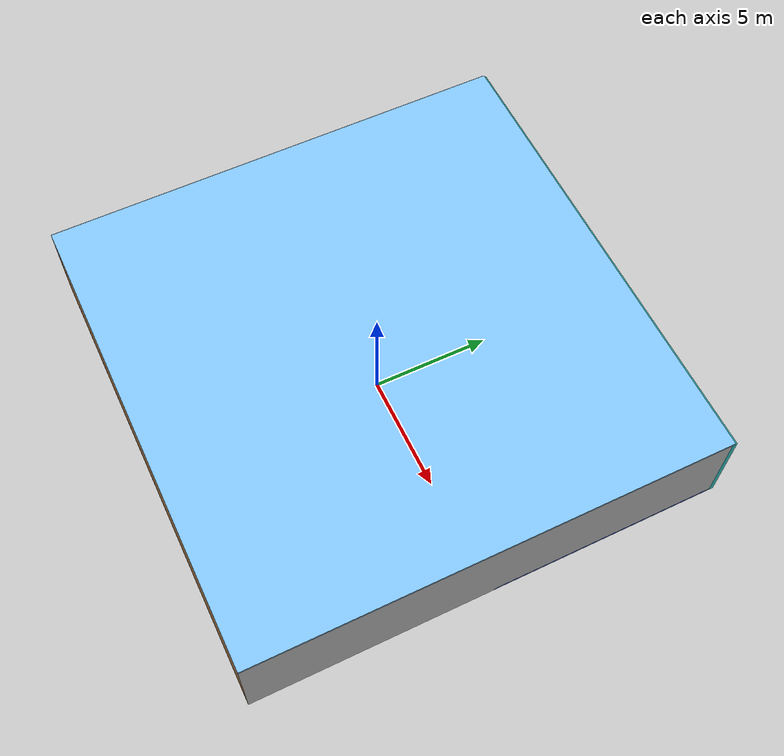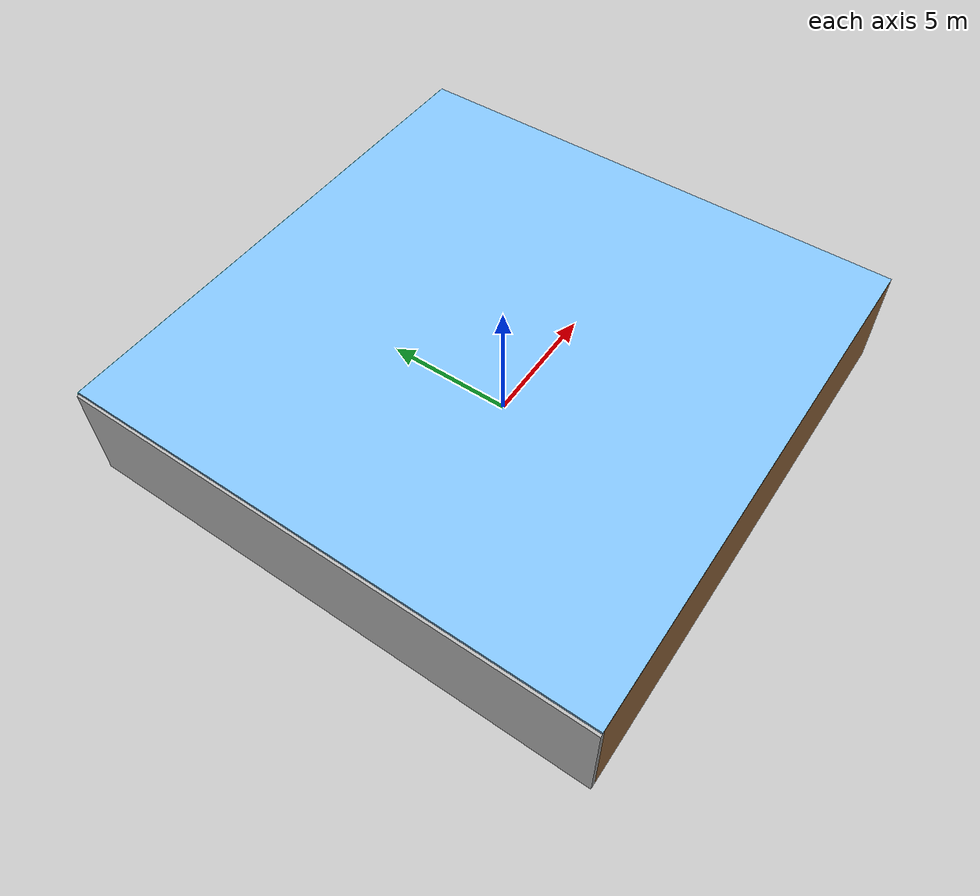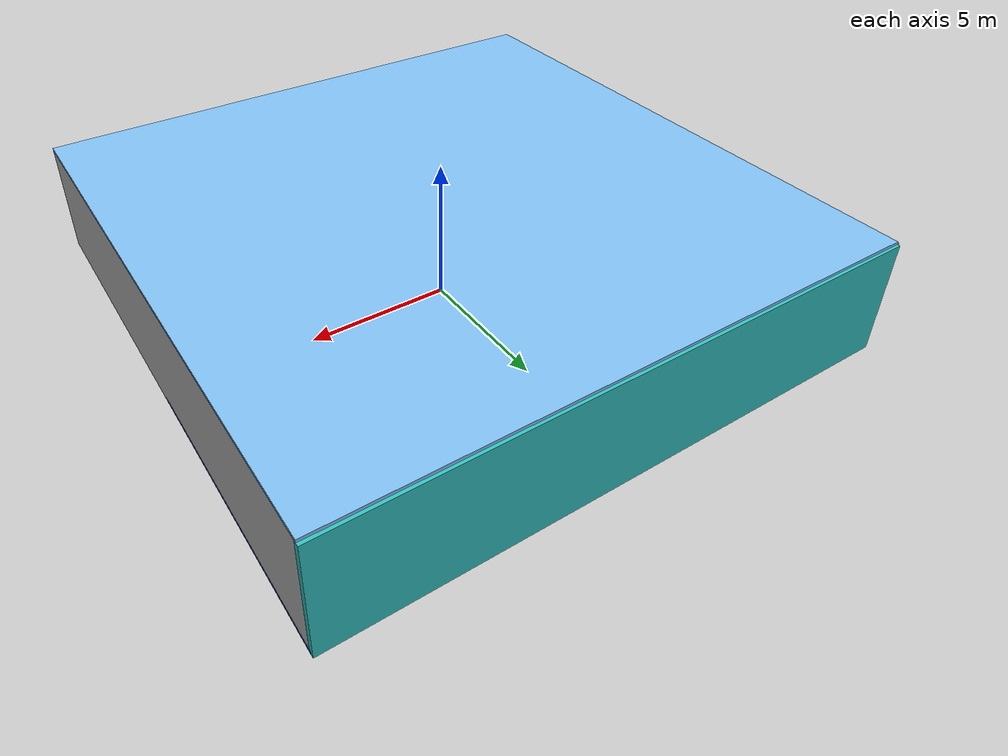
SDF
<sdf version="1.4">
 <world name="default">
  <physics type="ode">
   <max_step_size>0.001</max_step_size>
   <real_time_factor>1</real_time_factor>
   <real_time_update_rate>1000</real_time_update_rate>
   <gravity>0 0 -9.8</gravity>
  </physics>
  <scene><ambient>0.4 0.4 0.4 1</ambient><background>0.7 0.7 0.7 1</background><shadows>1</shadows></scene>
  <model name="Surrounding">
   <static>1</static>
   <link name="Ceiling">
    <collision name="Ceiling_Collision"><geometry><box><size>20 20 0.1</size></box></geometry></collision>
    <visual name="Ceiling_Visual">
     <geometry><box><size>20 20 0.1</size></box></geometry>
     <material>
      <script><uri>file://media/materials/scripts/gazebo.material</uri><name>Gazebo/SkyBlue</name></script>
     </material>
    </visual>
    <pose>0 0 4.05 0 0 0</pose>
   </link>
   <link name="Wall_South">
    <collision name="Wall_South_Collision">
     <geometry><box><size>20 0 4</size></box></geometry>
     <pose>0 0 2 0 -0 0</pose>
    </collision>
    <visual name="Wall_South_Visual">
     <pose>0 0 2 0 -0 0</pose>
     <geometry><box><size>20 0 4</size></box></geometry>
     <material>
      <script><uri>file://media/materials/scripts/gazebo.material</uri><name>Gazebo/WoodPallet</name></script>
     </material>
    </visual>
    <velocity_decay><linear>0</linear><angular>0</angular></velocity_decay>
    <pose>0 -10 0 0 -0 0</pose>
   </link>
   <link name="Wall_East">
    <collision name="Wall_21_Collision">
     <geometry><box><size>20 0 4</size></box></geometry>
     <pose>0 0 2 0 -0 0</pose>
    </collision>
    <visual name="Wall_21_Visual">
     <pose>0 0 2 0 -0 0</pose>
     <geometry><box><size>20 0 4</size></box></geometry>
     <material>
      <script><uri>file://media/materials/scripts/gazebo.material</uri><name>Gazebo/JointAnchor</name></script>
     </material>
    </visual>
    <velocity_decay><linear>0</linear><angular>0</angular></velocity_decay>
    <pose>10 0 0 0 -0 1.5708</pose>
   </link>
   <link name="Wall_North">
    <collision name="Wall_22_Collision">
     <geometry><box><size>20 0.2 4</size></box></geometry>
     <pose>0 0 2 0 -0 0</pose>
    </collision>
    <visual name="Wall_22_Visual">
     <pose>0 0 2 0 -0 0</pose>
     <geometry><box><size>20 0.2 4</size></box></geometry>
     <material>
      <script><uri>file://media/materials/scripts/gazebo.material</uri><name>Gazebo/Turquoise</name></script>
     </material>
    </visual>
    <velocity_decay><linear>0</linear><angular>0</angular></velocity_decay>
    <pose>0 10 0 0 -0 0</pose>
   </link>
   <link name="Wall_West">
    <collision name="Wall_23_Collision">
     <geometry><box><size>20 0.2 4</size></box></geometry>
     <pose>0 0 2 0 -0 0</pose>
    </collision>
    <visual name="Wall_23_Visual">
     <pose>0 0 2 0 -0 0</pose>
     <geometry><box><size>20 0.2 4</size></box></geometry>
     <material>
      <script><uri>file://media/materials/scripts/gazebo.material</uri><name>Gazebo/LightOn</name></script>
     </material>
    </visual>
    <velocity_decay><linear>0</linear><angular>0</angular></velocity_decay>
    <pose>-10 0 0 0 0 -1.5708</pose>
   </link>
   <link name="Ground_link">
    <collision name="collision">
     <pose>0 0 .05 0 -0 0</pose>
     <geometry><box><size>20 20 0.1</size></box></geometry>
    </collision>
    <visual name="visual">
     <pose>0 0 .05 0 -0 0</pose>
     <geometry><box><size>20 20 0.1</size></box></geometry>
     <material>
      <script><uri>file://media/materials/scripts/gazebo.material</uri><name>Gazebo/BlueLaser</name></script>
     </material>
    </visual>
   </link>
   <static>1</static>
  </model>
  <spherical_coordinates>
   <surface_model>EARTH_WGS84</surface_model>
   <latitude_deg>0</latitude_deg>
   <longitude_deg>0</longitude_deg>
   <elevation>0</elevation>
   <heading_deg>0</heading_deg>
  </spherical_coordinates>
  <light name="lightball_0" type="diffuse">
   <diffuse>0.8 0.8 0.8 1</diffuse>
   <specular>0.2 0.2 0.2 1</specular>
   <attenuation>
    <range>100</range>
    <constant>0.7</constant>
    <linear>0.01</linear>
    <quadratic>0.001</quadratic>
   </attenuation>
   <direction>-0.5 0.1 -0.9</direction>
   <pose>-8.7739312737 -4.3786307102 0.738708754958 0 0 0</pose>
  </light>
  <light name="lightball_1" type="diffuse">
   <diffuse>0.8 0.8 0.8 1</diffuse>
   <specular>0.2 0.2 0.2 1</specular>
   <attenuation>
    <range>100</range>
    <constant>0.7</constant>
    <linear>0.01</linear>
    <quadratic>0.001</quadratic>
   </attenuation>
   <direction>-0.5 0.1 -0.9</direction>
   <pose>8.89645833777 -3.37002856863 2.71094150174 0 0 0</pose>
  </light>
  <light name="lightball_2" type="diffuse">
   <diffuse>0.8 0.8 0.8 1</diffuse>
   <specular>0.2 0.2 0.2 1</specular>
   <attenuation>
    <range>100</range>
    <constant>0.7</constant>
    <linear>0.01</linear>
    <quadratic>0.001</quadratic>
   </attenuation>
   <direction>-0.5 0.1 -0.9</direction>
   <pose>-5.36357787789 7.26868356797 2.3041875917 0 0 0</pose>
  </light>
  <light name="lightball_3" type="diffuse">
   <diffuse>0.8 0.8 0.8 1</diffuse>
   <specular>0.2 0.2 0.2 1</specular>
   <attenuation>
    <range>100</range>
    <constant>0.7</constant>
    <linear>0.01</linear>
    <quadratic>0.001</quadratic>
   </attenuation>
   <direction>-0.5 0.1 -0.9</direction>
   <pose>-7.96433700502 8.45860744599 1.36217943816 0 0 0</pose>
  </light>
  <light name="lightball_4" type="diffuse">
   <diffuse>0.8 0.8 0.8 1</diffuse>
   <specular>0.2 0.2 0.2 1</specular>
   <attenuation>
    <range>100</range>
    <constant>0.7</constant>
    <linear>0.01</linear>
    <quadratic>0.001</quadratic>
   </attenuation>
   <direction>-0.5 0.1 -0.9</direction>
   <pose>7.18227984528 -8.26709296098 3.81996924133 0 0 0</pose>
  </light>
  <light name="lightball_5" type="diffuse">
   <diffuse>0.8 0.8 0.8 1</diffuse>
   <specular>0.2 0.2 0.2 1</specular>
   <attenuation>
    <range>100</range>
    <constant>0.7</constant>
    <linear>0.01</linear>
    <quadratic>0.001</quadratic>
   </attenuation>
   <direction>-0.5 0.1 -0.9</direction>
   <pose>3.3905797534 -9.2960504876 3.1757419213 0 0 0</pose>
  </light>
  <light name="lightball_6" type="diffuse">
   <diffuse>0.8 0.8 0.8 1</diffuse>
   <specular>0.2 0.2 0.2 1</specular>
   <attenuation>
    <range>100</range>
    <constant>0.7</constant>
    <linear>0.01</linear>
    <quadratic>0.001</quadratic>
   </attenuation>
   <direction>-0.5 0.1 -0.9</direction>
   <pose>6.95921030987 8.1747504996 2.97336205292 0 0 0</pose>
  </light>
  <light name="lightball_7" type="diffuse">
   <diffuse>0.8 0.8 0.8 1</diffuse>
   <specular>0.2 0.2 0.2 1</specular>
   <attenuation>
    <range>100</range>
    <constant>0.7</constant>
    <linear>0.01</linear>
    <quadratic>0.001</quadratic>
   </attenuation>
   <direction>-0.5 0.1 -0.9</direction>
   <pose>-0.233144752442 8.50454841879 1.8838658343 0 0 0</pose>
  </light>
  <light name="lightball_8" type="diffuse">
   <diffuse>0.8 0.8 0.8 1</diffuse>
   <specular>0.2 0.2 0.2 1</specular>
   <attenuation>
    <range>100</range>
    <constant>0.7</constant>
    <linear>0.01</linear>
    <quadratic>0.001</quadratic>
   </attenuation>
   <direction>-0.5 0.1 -0.9</direction>
   <pose>-8.97253177489 9.81802070578 1.38871605872 0 0 0</pose>
  </light>
  <include><uri>model://cabinet</uri><pose>-3.53772467114 -5.69323794872 0 0 0 1.29126287974</pose></include>
  <include>
   <uri>model://robocup_3Dsim_goal</uri>
   <pose>-3.97949238633 5.18148819156 0 0 0 2.2480471718</pose>
  </include>
  <include>
   <uri>model://textured_shapes</uri>
   <pose>-2.15515772822 -4.1002114355 0 0 0 3.04372817843</pose>
  </include>
  <include>
   <uri>model://textured_shapes</uri>
   <pose>-0.817273046955 5.07977807997 0 0 0 2.50373307898</pose>
  </include>
  <include><uri>model://table</uri><pose>0.593310531928 -8.20207258113 0 0 0 2.17814663957</pose></include>
  <include>
   <uri>model://robocup_3Dsim_goal</uri>
   <pose>0.965574782054 3.5529792397 0 0 0 2.80811608846</pose>
  </include>
  <include>
   <uri>model://robocup_3Dsim_goal</uri>
   <pose>3.96548188287 -1.71755693024 0 0 0 2.433951709</pose>
  </include>
  <include><uri>model://table</uri><pose>7.88030486932 8.10383104428 0 0 0 2.24109306159</pose></include>
 </world>
</sdf>

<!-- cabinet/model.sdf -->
<sdf version="1.5">
  <model name="cabinet">
    <static>true</static>
    <link name="cabinet_bottom_plate">
      <inertial>
        <pose>0 0 -1 0 0 0</pose>
        <inertia>
          <ixx>2.050000</ixx>
          <ixy>0</ixy>
          <ixz>0</ixz>
          <iyy>2.050000</iyy>
          <iyz>0</iyz>
          <izz>2.050000</izz>
        </inertia>
        <mass>25.000000</mass>
      </inertial>
      <collision name="cabinet_bottom_plate_geom">
        <pose>0 0 0.010000 0 0 0</pose>
        <geometry>
          <box>
            <size>0.450000 0.450000 0.020000</size>
          </box>
        </geometry>
      </collision>
      <visual name="cabinet_bottom_plate_geom_visual">
        <pose>0 0 0.010000 0 0 0</pose>
        <geometry>
          <box>
            <size>0.450000 0.450000 0.020000</size>
          </box>
        </geometry>
        <material>
          <script>
            <uri>model://media/materials/scripts/gazebo.material</uri>
            <name>Gazebo/Wood</name>
          </script>
        </material>
      </visual>
      <collision name="cabinet_bottom_plate_geom_cabinet_back_plate">
        <pose>0.235000 0 0.510000 0 0 0</pose>
        <geometry>
          <box>
            <size>0.020000 0.450000 1.020000</size>
          </box>
        </geometry>
      </collision>
      <visual name="cabinet_bottom_plate_geom_cabinet_back_plate_visual">
        <pose>0.235000 0 0.510000 0 0 0</pose>
        <geometry>
          <box>
            <size>0.020000 0.450000 1.020000</size>
          </box>
        </geometry>
        <material>
          <script>
            <uri>model://media/materials/scripts/gazebo.material</uri>
            <name>Gazebo/Wood</name>
          </script>
        </material>
      </visual>
      <collision name="cabinet_bottom_plate_geom_cabinet_left_plate">
        <pose>0 0.235000 0.510000 0 0 0</pose>
        <geometry>
          <box>
            <size>0.450000 0.020000 1.020000</size>
          </box>
        </geometry>
      </collision>
      <visual name="cabinet_bottom_plate_geom_cabinet_left_plate_visual">
        <pose>0 0.235000 0.510000 0 0 0</pose>
        <geometry>
          <box>
            <size>0.450000 0.020000 1.020000</size>
          </box>
        </geometry>
        <material>
          <script>
            <uri>model://media/materials/scripts/gazebo.material</uri>
            <name>Gazebo/Wood</name>
          </script>
        </material>
      </visual>
      <collision name="cabinet_bottom_plate_geom_cabinet_middle_plate">
        <pose>0 0 0.510000 0 0 0</pose>
        <geometry>
          <box>
            <size>0.450000 0.450000 0.020000</size>
          </box>
        </geometry>
      </collision>
      <visual name="cabinet_bottom_plate_geom_cabinet_middle_plate_visual">
        <pose>0 0 0.510000 0 0 0</pose>
        <geometry>
          <box>
            <size>0.450000 0.450000 0.020000</size>
          </box>
        </geometry>
        <material>
          <script>
            <uri>model://media/materials/scripts/gazebo.material</uri>
            <name>Gazebo/Wood</name>
          </script>
        </material>
      </visual>
      <collision name="cabinet_bottom_plate_geom_cabinet_right_plate">
        <pose>0 -0.235000 0.510000 0 0 0</pose>
        <geometry>
          <box>
            <size>0.450000 0.020000 1.020000</size>
          </box>
        </geometry>
      </collision>
      <visual name="cabinet_bottom_plate_geom_cabinet_right_plate_visual">
        <pose>0 -0.235000 0.510000 0 0 0</pose>
        <geometry>
          <box>
            <size>0.450000 0.020000 1.020000</size>
          </box>
        </geometry>
        <material>
          <script>
            <uri>model://media/materials/scripts/gazebo.material</uri>
            <name>Gazebo/Wood</name>
          </script>
        </material>
      </visual>
      <collision name="cabinet_bottom_plate_geom_cabinet_top_plate">
        <pose>0 0 1.010000 0 0 0</pose>
        <geometry>
          <box>
            <size>0.450000 0.450000 0.020000</size>
          </box>
        </geometry>
      </collision>
      <visual name="cabinet_bottom_plate_geom_cabinet_top_plate_visual">
        <pose>0 0 1.010000 0 0 0</pose>
        <geometry>
          <box>
            <size>0.450000 0.450000 0.020000</size>
          </box>
        </geometry>
        <material>
          <script>
            <uri>model://media/materials/scripts/gazebo.material</uri>
            <name>Gazebo/Wood</name>
          </script>
        </material>
      </visual>
    </link>
  </model>
</sdf>

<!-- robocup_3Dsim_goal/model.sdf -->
<sdf version="1.5">
  <model name="robocup_3d_goal">
    <static>true</static>
    <link name="left_post">
      <pose>0 1.05 0.45 0 0 0</pose>
      <collision name="collision">
        <geometry>
          <cylinder>
            <radius>0.05</radius>
            <length>0.9</length>
          </cylinder>
        </geometry>
      </collision>
      <visual name="visual">
        <geometry>
          <cylinder>
            <radius>0.05</radius>
            <length>0.9</length>
          </cylinder>
        </geometry>
        <material>
          <script>
            <uri>file://media/materials/scripts/gazebo.material</uri>
            <name>Gazebo/ZincYellow</name>
          </script>
        </material>
      </visual>
    </link>
    <link name="left_support_horiz_lower">
      <pose>0.30 1.05 0.01 0 0 0</pose>
      <collision name="collision">
        <geometry>
          <box>
            <size>0.50 0.02 0.02</size>
          </box>
        </geometry>
      </collision>
      <visual name="visual">
        <geometry>
          <box>
            <size>0.50 0.02 0.02</size>
          </box>
        </geometry>
        <material>
          <script>
            <uri>file://media/materials/scripts/gazebo.material</uri>
            <name>Gazebo/White</name>
          </script>
        </material>
      </visual>
    </link>
    <link name="left_support_horiz_upper">
      <pose>0.30 1.05 0.79 0 0 0</pose>
      <collision name="collision">
        <geometry>
          <box>
            <size>0.50 0.02 0.02</size>
          </box>
        </geometry>
      </collision>
      <visual name="visual">
        <geometry>
          <box>
            <size>0.50 0.02 0.02</size>
          </box>
        </geometry>
        <material>
          <script>
            <uri>file://media/materials/scripts/gazebo.material</uri>
            <name>Gazebo/White</name>
          </script>
        </material>
      </visual>
    </link>
    <link name="left_support_vertical">
      <pose>0.56 1.05 0.4 0 1.5708 0</pose>
      <collision name="collision">
        <geometry>
          <box>
            <size>0.80 0.02 0.02</size>
          </box>
        </geometry>
      </collision>
      <visual name="visual">
        <geometry>
          <box>
            <size>0.80 0.02 0.02</size>
          </box>
        </geometry>
        <material>
          <script>
            <uri>file://media/materials/scripts/gazebo.material</uri>
            <name>Gazebo/White</name>
          </script>
        </material>
      </visual>
    </link>
    <link name="right_support_horiz_lower">
      <pose>0.30 -1.05 0.01 0 0 0</pose>
      <collision name="collision">
        <geometry>
          <box>
            <size>0.50 0.02 0.02</size>
          </box>
        </geometry>
      </collision>
      <visual name="visual">
        <geometry>
          <box>
            <size>0.50 0.02 0.02</size>
          </box>
        </geometry>
        <material>
          <script>
            <uri>file://media/materials/scripts/gazebo.material</uri>
            <name>Gazebo/White</name>
          </script>
        </material>
      </visual>
    </link>
    <link name="right_support_horiz_upper">
      <pose>0.30 -1.05 0.79 0 0 0</pose>
      <collision name="collision">
        <geometry>
          <box>
            <size>0.50 0.02 0.02</size>
          </box>
        </geometry>
      </collision>
      <visual name="visual">
        <geometry>
          <box>
            <size>0.50 0.02 0.02</size>
          </box>
        </geometry>
        <material>
          <script>
            <uri>file://media/materials/scripts/gazebo.material</uri>
            <name>Gazebo/White</name>
          </script>
        </material>
      </visual>
    </link>
    <link name="right_support_vertical">
      <pose>0.56 -1.05 0.4 0 1.5708 0</pose>
      <collision name="collision">
        <geometry>
          <box>
            <size>0.80 0.02 0.02</size>
          </box>
        </geometry>
      </collision>
      <visual name="visual">
        <geometry>
          <box>
            <size>0.80 0.02 0.02</size>
          </box>
        </geometry>
        <material>
          <script>
            <uri>file://media/materials/scripts/gazebo.material</uri>
            <name>Gazebo/White</name>
          </script>
        </material>
      </visual>
    </link>
    <link name="center_support_horiz_lower">
      <pose>0.56 0 0.01 0 1.5708 0</pose>
      <collision name="collision">
        <geometry>
          <box>
            <size>0.02 2.08 0.02</size>
          </box>
        </geometry>
      </collision>
      <visual name="visual">
        <geometry>
          <box>
            <size>0.02 2.08 0.02</size>
          </box>
        </geometry>
        <material>
          <script>
            <uri>file://media/materials/scripts/gazebo.material</uri>
            <name>Gazebo/White</name>
          </script>
        </material>
      </visual>
    </link>
    <link name="center_support_horiz_upper">
      <pose>0.56 0 0.79 0 1.5708 0</pose>
      <collision name="collision">
        <geometry>
          <box>
            <size>0.02 2.08 0.02</size>
          </box>
        </geometry>
      </collision>
      <visual name="visual">
        <geometry>
          <box>
            <size>0.02 2.08 0.02</size>
          </box>
        </geometry>
        <material>
          <script>
            <uri>file://media/materials/scripts/gazebo.material</uri>
            <name>Gazebo/White</name>
          </script>
        </material>
      </visual>
    </link>
    <link name="right_post">
      <pose>0 -1.05 0.45 0 0 0</pose>
      <collision name="collision">
        <geometry>
          <cylinder>
            <radius>0.05</radius>
            <length>0.9</length>
          </cylinder>
        </geometry>
      </collision>
      <visual name="visual">
        <geometry>
          <cylinder>
            <radius>0.05</radius>
            <length>0.9</length>
          </cylinder>
        </geometry>
        <material>
          <script>
            <uri>file://media/materials/scripts/gazebo.material</uri>
            <name>Gazebo/ZincYellow</name>
          </script>
        </material>
      </visual>
    </link>
    <link name="crossbar">
      <pose>0 0 0.85 1.57 1.57 0</pose>
      <collision name="collision">
        <geometry>
          <cylinder>
            <radius>0.05</radius>
            <length>2.0</length>
          </cylinder>
        </geometry>
      </collision>
      <visual name="visual">
        <geometry>
          <cylinder>
            <radius>0.05</radius>
            <length>2.0</length>
          </cylinder>
        </geometry>
        <material>
          <script>
            <uri>file://media/materials/scripts/gazebo.material</uri>
            <name>Gazebo/ZincYellow</name>
          </script>
        </material>
      </visual>
    </link>
    <link name="center_net">
      <pose>0.56 0 0.40 0 0 0</pose>
      <collision name="collision">
        <geometry>
          <box>
            <size>0.01 2.1 0.80</size>
          </box>
        </geometry>
      </collision>
      <visual name="visual">
        <geometry>
          <box>
            <size>0.01 2.1 0.80</size>
          </box>
        </geometry>
        <material>
          <script>
            <uri>model://../model_source/models/robocup09_spl_field/materials/scripts/</uri>
            <uri>model://../model_source/models/robocup09_spl_field/materials/textures/</uri>
            <name>RoboCup/Net</name>
          </script>
        </material>
      </visual>
    </link>
    <link name="left_net">
      <pose>0.30 1.05 0.40 0 0 0</pose>
      <collision name="collision">
        <geometry>
          <box>
            <size>0.50 0.01 0.76</size>
          </box>
        </geometry>
      </collision>
      <visual name="visual">
        <geometry>
          <box>
            <size>0.50 0.01 0.76</size>
          </box>
        </geometry>
        <material>
          <script>
            <uri>model://../model_source/models/robocup09_spl_field/materials/scripts/</uri>
            <uri>model://../model_source/models/robocup09_spl_field/materials/textures/</uri>
            <name>RoboCup/Net</name>
          </script>
        </material>
      </visual>
    </link>
    <link name="right_net">
      <pose>0.30 -1.05 0.40 0 0 0</pose>
      <collision name="collision">
        <geometry>
          <box>
            <size>0.50 0.01 0.76</size>
          </box>
        </geometry>
      </collision>
      <visual name="visual">
        <geometry>
          <box>
            <size>0.50 0.01 0.76</size>
          </box>
        </geometry>
        <material>
          <script>
            <uri>model://../model_source/models/robocup09_spl_field/materials/scripts/</uri>
            <uri>model://../model_source/models/robocup09_spl_field/materials/textures/</uri>
            <name>RoboCup/Net</name>
          </script>
        </material>
      </visual>
    </link>
  </model>
</sdf>

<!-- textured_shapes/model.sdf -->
<sdf version="1.6">
  <model name="textured_shapes">
    <pose>0 0 0.5 0 0 0</pose>
    <link name="box">
      <pose>0 -1.5 0 0 0 0</pose>
      <collision name="collision">
        <geometry>
          <box>
            <size>1 1 1</size>
          </box>
        </geometry>
      </collision>
      <visual name="visual">
        <geometry>
          <box>
            <size>1 1 1</size>
          </box>
        </geometry>
        <material>
          <script>
            <uri>model://../model_source/models/textured_shapes/materials/scripts</uri>
            <uri>model://../model_source/models/textured_shapes/materials/textures</uri>
            <name>TexturedShape/Squares</name>
          </script>
        </material>
      </visual>
    </link>
    <link name="sphere">
      <collision name="collision">
        <geometry>
          <sphere>
            <radius>0.5</radius>
          </sphere>
        </geometry>
      </collision>
      <visual name="visual">
        <geometry>
          <sphere>
            <radius>0.5</radius>
          </sphere>
        </geometry>
        <material>
          <script>
            <uri>model://../model_source/models/textured_shapes/materials/scripts</uri>
            <uri>model://../model_source/models/textured_shapes/materials/textures</uri>
            <name>TexturedShape/Squares</name>
          </script>
        </material>
      </visual>
    </link>
    <link name="cylinder">
      <pose>0 1.5 0 0 0 0</pose>
      <collision name="collision">
        <geometry>
          <cylinder>
            <radius>0.5</radius>
            <length>1</length>
          </cylinder>
        </geometry>
      </collision>
      <visual name="visual">
        <geometry>
          <cylinder>
            <radius>0.5</radius>
            <length>1</length>
          </cylinder>
        </geometry>
        <material>
          <script>
            <uri>model://../model_source/models/textured_shapes/materials/scripts</uri>
            <uri>model://../model_source/models/textured_shapes/materials/textures</uri>
            <name>TexturedShape/Squares</name>
          </script>
        </material>
      </visual>
    </link>
  </model>
</sdf>

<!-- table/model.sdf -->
<sdf version="1.5">
  <model name="table">
    <static>true</static>
    <link name="link">
      <collision name="surface">
        <pose>0 0 1.0 0 0 0</pose>
        <geometry>
          <box>
            <size>1.5 0.8 0.03</size>
          </box>
        </geometry>
        <surface>
          <friction>
            <ode>
              <mu>0.6</mu>
              <mu2>0.6</mu2>
            </ode>
          </friction>
        </surface>
      </collision>
      <visual name="visual1">
        <pose>0 0 1.0 0 0 0</pose>
        <geometry>
          <box>
            <size>1.5 0.8 0.03</size>
          </box>
        </geometry>
        <material>
          <script>
            <uri>model://media/materials/scripts/gazebo.material</uri>
            <name>Gazebo/Wood</name>
          </script>
        </material>
      </visual>
      <collision name="front_left_leg">
        <pose>0.68 0.38 0.5 0 0 0</pose>
        <geometry>
          <cylinder>
            <radius>0.02</radius>
            <length>1.0</length>
          </cylinder>
        </geometry>
      </collision>
      <visual name="front_left_leg">
        <pose>0.68 0.38 0.5 0 0 0</pose>
        <geometry>
          <cylinder>
            <radius>0.02</radius>
            <length>1.0</length>
          </cylinder>
        </geometry>
        <material>
          <script>
            <uri>model://media/materials/scripts/gazebo.material</uri>
            <name>Gazebo/Grey</name>
          </script>
        </material>
      </visual>
      <collision name="front_right_leg">
        <pose>0.68 -0.38 0.5 0 0 0</pose>
        <geometry>
          <cylinder>
            <radius>0.02</radius>
            <length>1.0</length>
          </cylinder>
        </geometry>
      </collision>
      <visual name="front_right_leg">
        <pose>0.68 -0.38 0.5 0 0 0</pose>
        <geometry>
          <cylinder>
            <radius>0.02</radius>
            <length>1.0</length>
          </cylinder>
        </geometry>
        <material>
          <script>
            <uri>model://media/materials/scripts/gazebo.material</uri>
            <name>Gazebo/Grey</name>
          </script>
        </material>
      </visual>
      <collision name="back_right_leg">
        <pose>-0.68 -0.38 0.5 0 0 0</pose>
        <geometry>
          <cylinder>
            <radius>0.02</radius>
            <length>1.0</length>
          </cylinder>
        </geometry>
      </collision>
      <visual name="back_right_leg">
        <pose>-0.68 -0.38 0.5 0 0 0</pose>
        <geometry>
          <cylinder>
            <radius>0.02</radius>
            <length>1.0</length>
          </cylinder>
        </geometry>
        <material>
          <script>
            <uri>model://media/materials/scripts/gazebo.material</uri>
            <name>Gazebo/Grey</name>
          </script>
        </material>
      </visual>
      <collision name="back_left_leg">
        <pose>-0.68 0.38 0.5 0 0 0</pose>
        <geometry>
          <cylinder>
            <radius>0.02</radius>
            <length>1.0</length>
          </cylinder>
        </geometry>
      </collision>
      <visual name="back_left_leg">
        <pose>-0.68 0.38 0.5 0 0 0</pose>
        <geometry>
          <cylinder>
            <radius>0.02</radius>
            <length>1.0</length>
          </cylinder>
        </geometry>
        <material>
          <script>
            <uri>model://media/materials/scripts/gazebo.material</uri>
            <name>Gazebo/Grey</name>
          </script>
        </material>
      </visual>
    </link>
  </model>
</sdf>
